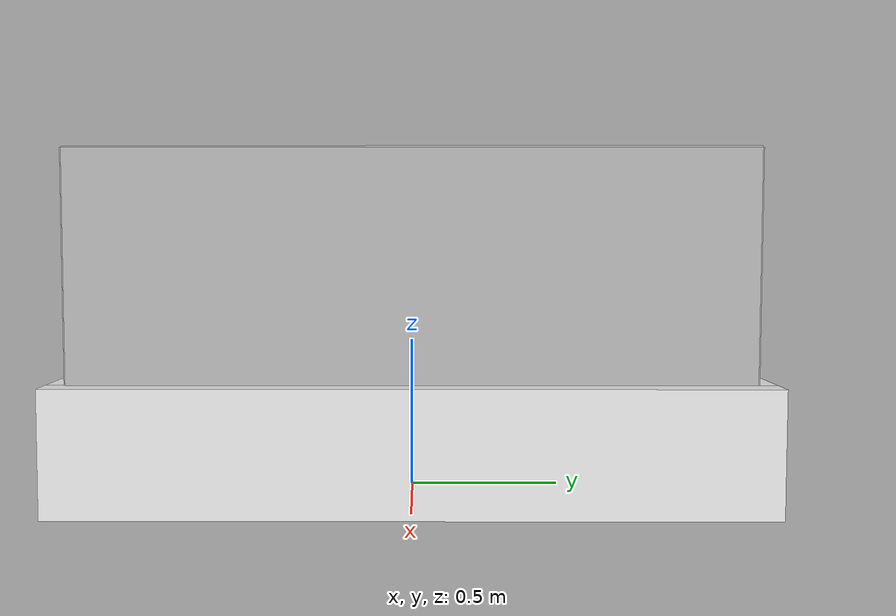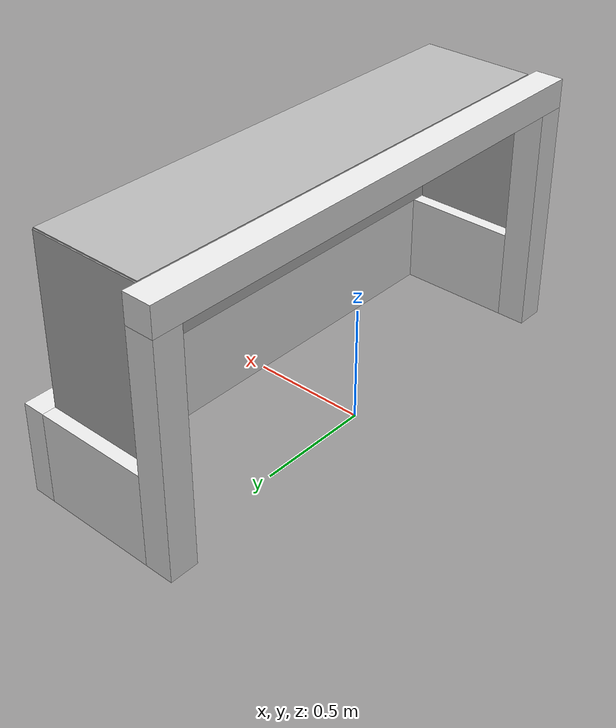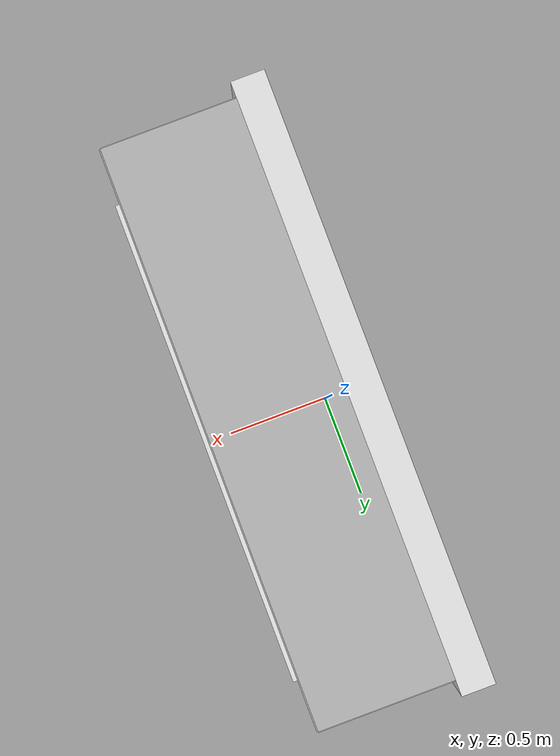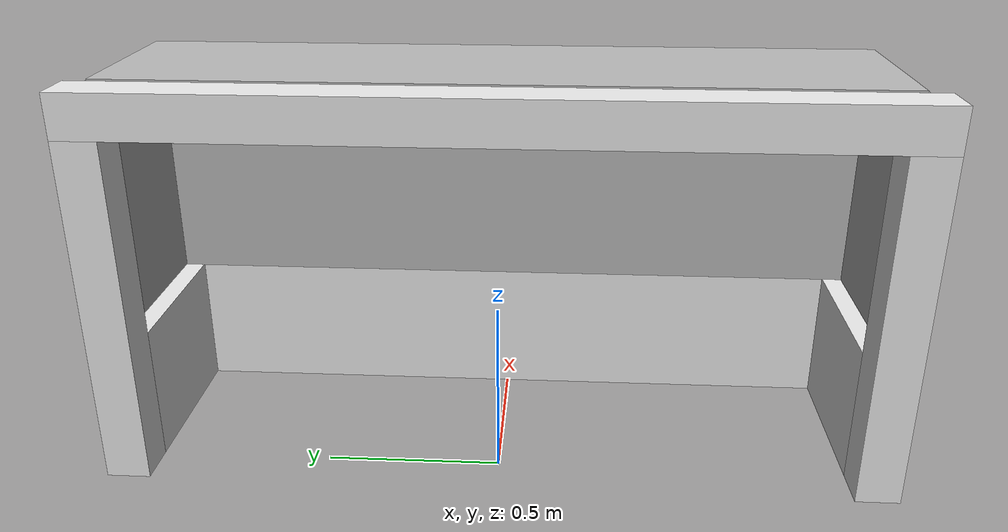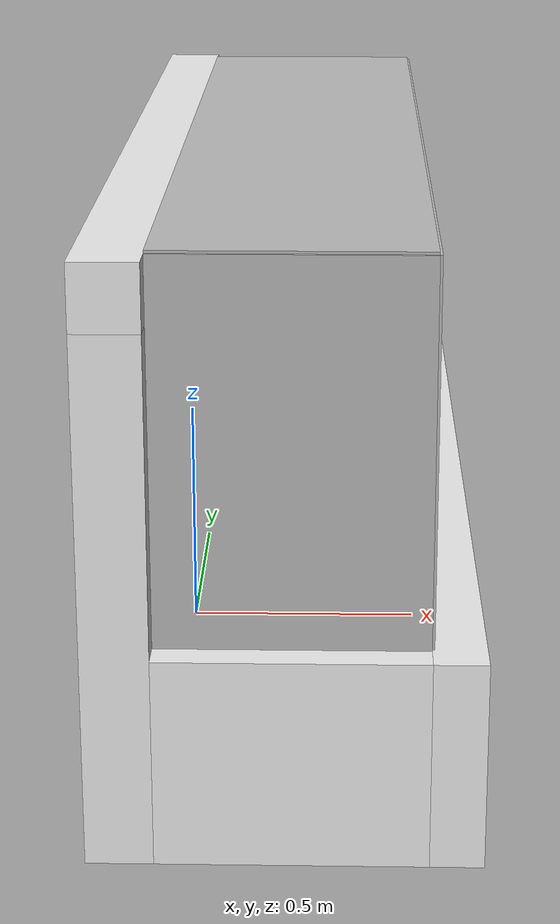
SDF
<?xml version="1.0" ?>
<sdf version="1.4">
  <model name="RoboCup15_MSL_Goal">
    <static>true</static>

    <link name="left_post">
      <pose>-0.0625 1.0625 0.5 0 0 0</pose>
      <collision name="collision">
        <geometry>
          <box><size>0.125 0.125 1.0</size></box>
        </geometry>
      </collision>
      <visual name="visual">
        <geometry>
          <box><size>0.125 0.125 1.0</size></box>
        </geometry>
        <material>
          <script>
            <uri>file:///home/kimbring2/catkin_ws/src/jetbot/jetbot_gazebo/materials/scripts/gazebo.material</uri>
            <name>Gazebo/White</name>
          </script>
        </material>
      </visual>
    </link>

    <link name="right_post">
      <pose>-0.0625 -1.0625 0.5 0 0 0</pose>
      <collision name="collision">
        <geometry>
          <box><size>0.125 0.125 1.0</size></box>
        </geometry>
      </collision>
      <visual name="visual">
        <geometry>
          <box><size>0.125 0.125 1.0</size></box>
        </geometry>
        <material>
          <script>
            <uri>file:///home/kimbring2/catkin_ws/src/jetbot/jetbot_gazebo/materials/scripts/gazebo.material</uri>
            <name>Gazebo/White</name>
          </script>
        </material>
      </visual>
    </link>

    <link name="crossbar">
      <pose>-0.0625 0 1.0625 0 0 0</pose>
      <collision name="collision">
        <geometry>
          <box><size>0.125 2.25 0.125</size></box>
        </geometry>
      </collision>
      <visual name="visual">
        <geometry>
          <box><size>0.125 2.25 0.125</size></box>
        </geometry>
        <material>
          <script>
            <uri>file:///home/kimbring2/catkin_ws/src/jetbot/jetbot_gazebo/materials/scripts/gazebo.material</uri>
            <name>Gazebo/White</name>
          </script>
        </material>
      </visual>
    </link>

    <link name="left_support_horiz_lower">
      <pose>0.25 1.0625 0.2 0 0 0</pose>
      <collision name="collision">
        <geometry>
          <box><size>0.5 0.125 0.4</size></box>
        </geometry>
      </collision>
      <visual name="visual">
        <geometry>
          <box><size>0.5 0.125 0.4</size></box>
        </geometry>
        <material>
          <script>
            <uri>file:///home/kimbring2/catkin_ws/src/jetbot/jetbot_gazebo/materials/scripts/gazebo.material</uri>
            <name>Gazebo/White</name>
          </script>
        </material>
      </visual>
    </link>

    <link name="right_support_horiz_lower">
      <pose>0.25 -1.0625 0.2 0 0 0</pose>
      <collision name="collision">
        <geometry>
          <box><size>0.5 0.125 0.4</size></box>
        </geometry>
      </collision>
      <visual name="visual">
        <geometry>
          <box><size>0.5 0.125 0.4</size></box>
        </geometry>
        <material>
          <script>
            <uri>file://media/materials/scripts/gazebo.material</uri>
            <name>Gazebo/White</name>
          </script>
        </material>
      </visual>
    </link>

        <link name="center_support_horiz_lower">
      <pose>0.55 0 0.2 0 0 0</pose>
      <collision name="collision">
        <geometry>
          <box><size>0.10 2.25 0.4</size></box>
        </geometry>
      </collision>
      <visual name="visual">
        <geometry>
          <box><size>0.10 2.25 0.4</size></box>
        </geometry>
        <material>
          <script>
            <uri>file:///home/kimbring2/catkin_ws/src/jetbot/jetbot_gazebo/materials/scripts/gazebo.material</uri>
            <name>Gazebo/White</name>
          </script>
        </material>
      </visual>
    </link>

    <link name="center_net">
      <pose>0.5 0 0.7625 0 0 0</pose>
      <collision name="collision">
        <geometry>
          <box><size>0.01 2.125 0.725</size></box>
        </geometry>
      </collision>
      <visual name="visual">
        <geometry>
          <box><size>0.01 2.125 0.725</size></box>
        </geometry>
        <material>
          <script>
            <uri>file:///home/kimbring2/catkin_ws/src/jetbot/jetbot_gazebo/materials/scripts/</uri>
            <uri>file:///home/kimbring2/catkin_ws/src/jetbot/jetbot_gazebo/materials/textures/</uri>
            <name>RoboCup/Net</name>
          </script>
        </material>
      </visual>
    </link>

    <link name="left_net">
      <pose>0.25 1.0625 0.7625 0 0 0</pose>
      <collision name="collision">
        <geometry>
          <box>
            <size>0.5 0.01 0.725</size>
          </box>
        </geometry>
      </collision>
      <visual name="visual">
        <geometry>
          <box>
            <size>0.5 0.01 0.725</size>
          </box>
        </geometry>
        <material>
          <script>
            <uri>file:///home/kimbring2/catkin_ws/src/jetbot/jetbot_gazebo/materials/scripts/</uri>
            <uri>file:///home/kimbring2/catkin_ws/src/jetbot/jetbot_gazebo/materials/textures/</uri>
            <name>RoboCup/Net</name>
          </script>
        </material>
      </visual>
    </link>

    <link name="right_net">
      <pose>0.25 -1.0625 0.7625 0 0 0</pose>
      <collision name="collision">
        <geometry>
          <box>
            <size>0.5 0.01 0.725</size>
          </box>
        </geometry>
      </collision>
      <visual name="visual">
        <geometry>
          <box>
            <size>0.5 0.01 0.725</size>
          </box>
        </geometry>
        <material>
          <script>
            <uri>file:///home/kimbring2/catkin_ws/src/jetbot/jetbot_gazebo/materials/scripts/</uri>
            <uri>file:///home/kimbring2/catkin_ws/src/jetbot/jetbot_gazebo/materials/textures/</uri>
            <name>RoboCup/Net</name>
          </script>
        </material>
      </visual>
    </link>

    <link name='upper_net'>
      <pose>0.25 0 1.125 0 0 0</pose>
      <collision name='collision'>
        <geometry>
          <box><size>0.5 2.125 0.01</size></box>
        </geometry>
        <max_contacts>10</max_contacts>
      </collision>
      <visual name='visual'>
        <geometry>
          <box><size>0.5 2.125 0.01</size></box>
        </geometry>
        <material>
          <script>
            <uri>file:///home/kimbring2/catkin_ws/src/jetbot/jetbot_gazebo/materials/scripts/</uri>
            <uri>file:///home/kimbring2/catkin_ws/src/jetbot/jetbot_gazebo/materials/textures/</uri>
            <name>RoboCup/Net</name>
          </script>
        </material>
      </visual>
    </link>

  </model>
</sdf>
